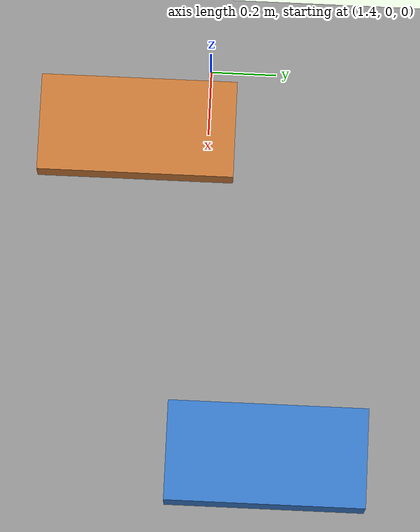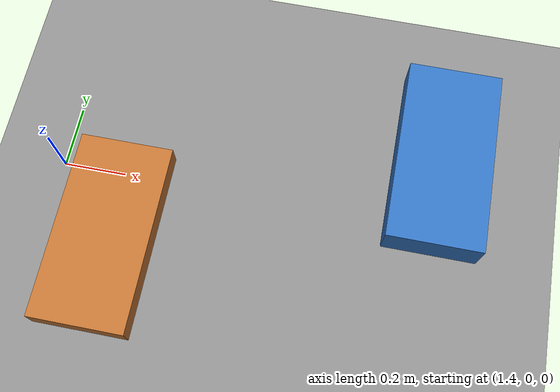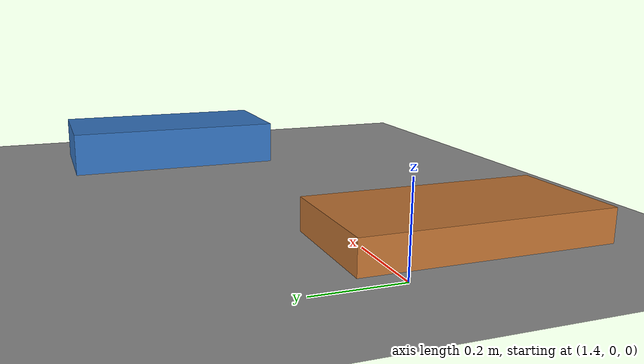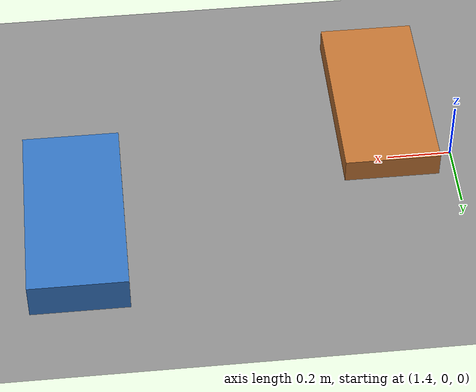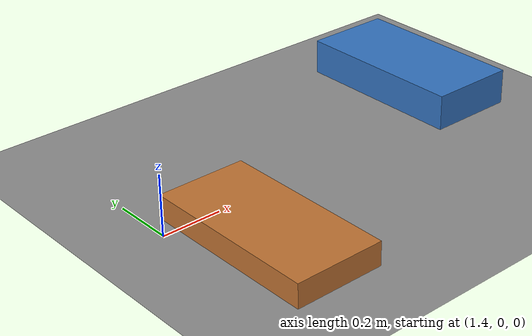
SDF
<?xml version="1.0"?>
<sdf version="1.8">
  <world name="bars">

    <plugin filename="gz-sim-physics-system" name="gz::sim::systems::Physics"/>
    <plugin filename="gz-sim-user-commands-system" name="gz::sim::systems::UserCommands"/>
    <plugin filename="gz-sim-scene-broadcaster-system" name="gz::sim::systems::SceneBroadcaster"/>
    <plugin filename="gz-sim-sensors-system" name="gz::sim::systems::Sensors">
      <render_engine>ogre2</render_engine>
    </plugin>
    <plugin filename="gz-sim-imu-system" name="gz::sim::systems::Imu"/>

    <physics name="1ms" type="dart">
      <max_step_size>0.001</max_step_size>
      <real_time_factor>1.0</real_time_factor>
    </physics>

    <gravity>0 0 -9.80665</gravity>

    <light type="directional" name="sun">
      <cast_shadows>true</cast_shadows>
      <pose>0 0 10 0 0 0</pose>
      <diffuse>0.9 0.9 0.9 1</diffuse>
      <specular>0.25 0.25 0.25 1</specular>
      <direction>-0.5 0.2 -0.9</direction>
    </light>

    <model name="ground_plane">
      <static>true</static>
      <link name="link">
        <collision name="collision">
          <geometry><plane><normal>0 0 1</normal><size>200 200</size></plane></geometry>
          <surface><friction><ode><mu>1.0</mu><mu2>1.0</mu2></ode></friction></surface>
        </collision>
        <visual name="visual">
          <geometry><plane><normal>0 0 1</normal><size>200 200</size></plane></geometry>
          <material>
            <ambient>0.4 0.4 0.4 1</ambient>
            <diffuse>0.55 0.55 0.55 1</diffuse>
          </material>
        </visual>
      </link>
    </model>

    <model name="bar_right_8cm">
      <static>true</static>
      <pose>1.6 -0.218 0.04 0 0 0</pose>
      <link name="link">
        <collision name="collision">
          <geometry><box><size>0.3 0.6 0.08</size></box></geometry>
          <surface><friction><ode><mu>1.0</mu><mu2>1.0</mu2></ode></friction></surface>
        </collision>
        <visual name="visual">
          <geometry><box><size>0.3 0.6 0.08</size></box></geometry>
          <material><ambient>0.75 0.45 0.2 1</ambient><diffuse>0.75 0.45 0.2 1</diffuse></material>
        </visual>
      </link>
    </model>

    <model name="bar_left_12cm">
      <static>true</static>
      <pose>2.6 0.218 0.06 0 0 0</pose>
      <link name="link">
        <collision name="collision">
          <geometry><box><size>0.3 0.6 0.12</size></box></geometry>
          <surface><friction><ode><mu>1.0</mu><mu2>1.0</mu2></ode></friction></surface>
        </collision>
        <visual name="visual">
          <geometry><box><size>0.3 0.6 0.12</size></box></geometry>
          <material><ambient>0.2 0.45 0.75 1</ambient><diffuse>0.2 0.45 0.75 1</diffuse></material>
        </visual>
      </link>
    </model>

  </world>
</sdf>
